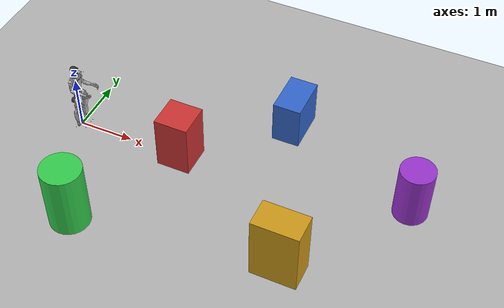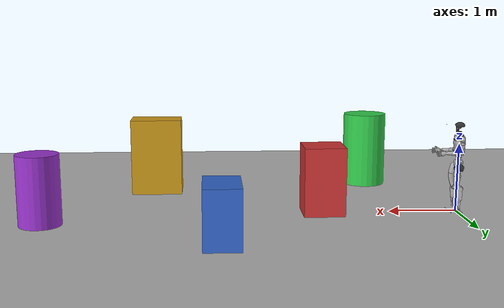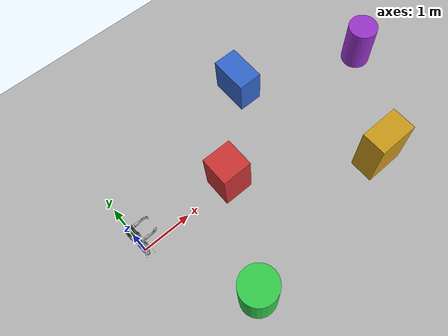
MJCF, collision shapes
<mujoco model="g1_12dof">
  <compiler angle="radian" meshdir="meshes/"/>

  <statistic meansize="0.144785" extent="1.23314" center="0.025392 2.0634e-05 -0.245975"/>
  <default>
    <joint damping="0.001" armature="0.01" frictionloss="0.1"/>
  </default>

  <asset>
    <mesh name="pelvis" file="pelvis.STL"/>
    <mesh name="pelvis_contour_link" file="pelvis_contour_link.STL"/>
    <mesh name="left_hip_pitch_link" file="left_hip_pitch_link.STL"/>
    <mesh name="left_hip_roll_link" file="left_hip_roll_link.STL"/>
    <mesh name="left_hip_yaw_link" file="left_hip_yaw_link.STL"/>
    <mesh name="left_knee_link" file="left_knee_link.STL"/>
    <mesh name="left_ankle_pitch_link" file="left_ankle_pitch_link.STL"/>
    <mesh name="left_ankle_roll_link" file="left_ankle_roll_link.STL"/>
    <mesh name="right_hip_pitch_link" file="right_hip_pitch_link.STL"/>
    <mesh name="right_hip_roll_link" file="right_hip_roll_link.STL"/>
    <mesh name="right_hip_yaw_link" file="right_hip_yaw_link.STL"/>
    <mesh name="right_knee_link" file="right_knee_link.STL"/>
    <mesh name="right_ankle_pitch_link" file="right_ankle_pitch_link.STL"/>
    <mesh name="right_ankle_roll_link" file="right_ankle_roll_link.STL"/>
    <mesh name="torso_link_23dof_rev_1_0" file="torso_link_23dof_rev_1_0.STL"/>
    <mesh name="logo_link" file="logo_link.STL"/>
    <mesh name="head_link" file="head_link.STL"/>
    <mesh name="left_shoulder_pitch_link" file="left_shoulder_pitch_link.STL"/>
    <mesh name="left_shoulder_roll_link" file="left_shoulder_roll_link.STL"/>
    <mesh name="left_shoulder_yaw_link" file="left_shoulder_yaw_link.STL"/>
    <mesh name="left_elbow_link" file="left_elbow_link.STL"/>
    <mesh name="left_wrist_roll_rubber_hand" file="left_wrist_roll_rubber_hand.STL"/>
    <mesh name="right_shoulder_pitch_link" file="right_shoulder_pitch_link.STL"/>
    <mesh name="right_shoulder_roll_link" file="right_shoulder_roll_link.STL"/>
    <mesh name="right_shoulder_yaw_link" file="right_shoulder_yaw_link.STL"/>
    <mesh name="right_elbow_link" file="right_elbow_link.STL"/>
    <mesh name="right_wrist_roll_rubber_hand" file="right_wrist_roll_rubber_hand.STL"/>
  </asset>

  <worldbody>
    <geom name="ground" type="plane" size="20 20 0.1" pos="0 0 0" rgba="0.7 0.7 0.7 1"/>
    <body name="pelvis" pos="0 0 0.793">
      <inertial pos="0.0144905 0.000151462 0.144068" quat="0.999881 -0.000505543 -0.0154276 0.000328408" mass="17.7349" diaginertia="0.552723 0.454092 0.211762"/>
      <joint name="floating_base_joint" type="free" limited="false" actuatorfrclimited="false"/>
      <!-- 2D LiDAR mounting body -->
      <body name="lidar_link" pos="0 0 0.20">
      <site name="lidar_ray_0" pos="0.20 0 0.30" quat="0.7071068 0 -0.7071068 0" size="0.005"/>
    <site name="lidar_ray_2" pos="0.20 0 0.30" quat="0.7193398 0 -0.6946584 0" size="0.005"/>
    <site name="lidar_ray_4" pos="0.20 0 0.30" quat="0.7313537 0 -0.6819984 0" size="0.005"/>
    <site name="lidar_ray_6" pos="0.20 0 0.30" quat="0.7431448 0 -0.6691306 0" size="0.005"/>
    <site name="lidar_ray_8" pos="0.20 0 0.30" quat="0.7547096 0 -0.6560590 0" size="0.005"/>
    <site name="lidar_ray_10" pos="0.20 0 0.30" quat="0.7660444 0 -0.6427876 0" size="0.005"/>
    <site name="lidar_ray_12" pos="0.20 0 0.30" quat="0.7771460 0 -0.6293204 0" size="0.005"/>
    <site name="lidar_ray_14" pos="0.20 0 0.30" quat="0.7880108 0 -0.6156615 0" size="0.005"/>
    <site name="lidar_ray_16" pos="0.20 0 0.30" quat="0.7986355 0 -0.6018150 0" size="0.005"/>
    <site name="lidar_ray_18" pos="0.20 0 0.30" quat="0.8090170 0 -0.5877853 0" size="0.005"/>
    <site name="lidar_ray_20" pos="0.20 0 0.30" quat="0.8191520 0 -0.5735764 0" size="0.005"/>
    <site name="lidar_ray_22" pos="0.20 0 0.30" quat="0.8290376 0 -0.5591929 0" size="0.005"/>
    <site name="lidar_ray_24" pos="0.20 0 0.30" quat="0.8386706 0 -0.5446390 0" size="0.005"/>
    <site name="lidar_ray_26" pos="0.20 0 0.30" quat="0.8480481 0 -0.5299193 0" size="0.005"/>
    <site name="lidar_ray_28" pos="0.20 0 0.30" quat="0.8571673 0 -0.5150381 0" size="0.005"/>
    <site name="lidar_ray_30" pos="0.20 0 0.30" quat="0.8660254 0 -0.5000000 0" size="0.005"/>
    <site name="lidar_ray_32" pos="0.20 0 0.30" quat="0.8746197 0 -0.4848096 0" size="0.005"/>
    <site name="lidar_ray_34" pos="0.20 0 0.30" quat="0.8829476 0 -0.4694716 0" size="0.005"/>
    <site name="lidar_ray_36" pos="0.20 0 0.30" quat="0.8910065 0 -0.4539905 0" size="0.005"/>
    <site name="lidar_ray_38" pos="0.20 0 0.30" quat="0.8987940 0 -0.4383711 0" size="0.005"/>
    <site name="lidar_ray_40" pos="0.20 0 0.30" quat="0.9063078 0 -0.4226183 0" size="0.005"/>
    <site name="lidar_ray_42" pos="0.20 0 0.30" quat="0.9135455 0 -0.4067366 0" size="0.005"/>
    <site name="lidar_ray_44" pos="0.20 0 0.30" quat="0.9205049 0 -0.3907311 0" size="0.005"/>
    <site name="lidar_ray_46" pos="0.20 0 0.30" quat="0.9271839 0 -0.3746066 0" size="0.005"/>
    <site name="lidar_ray_48" pos="0.20 0 0.30" quat="0.9335804 0 -0.3583679 0" size="0.005"/>
    <site name="lidar_ray_50" pos="0.20 0 0.30" quat="0.9396926 0 -0.3420201 0" size="0.005"/>
    <site name="lidar_ray_52" pos="0.20 0 0.30" quat="0.9455186 0 -0.3255682 0" size="0.005"/>
    <site name="lidar_ray_54" pos="0.20 0 0.30" quat="0.9510565 0 -0.3090170 0" size="0.005"/>
    <site name="lidar_ray_56" pos="0.20 0 0.30" quat="0.9563048 0 -0.2923717 0" size="0.005"/>
    <site name="lidar_ray_58" pos="0.20 0 0.30" quat="0.9612617 0 -0.2756374 0" size="0.005"/>
    <site name="lidar_ray_60" pos="0.20 0 0.30" quat="0.9659258 0 -0.2588190 0" size="0.005"/>
    <site name="lidar_ray_62" pos="0.20 0 0.30" quat="0.9702957 0 -0.2419219 0" size="0.005"/>
    <site name="lidar_ray_64" pos="0.20 0 0.30" quat="0.9743701 0 -0.2249511 0" size="0.005"/>
    <site name="lidar_ray_66" pos="0.20 0 0.30" quat="0.9781476 0 -0.2079117 0" size="0.005"/>
    <site name="lidar_ray_68" pos="0.20 0 0.30" quat="0.9816272 0 -0.1908090 0" size="0.005"/>
    <site name="lidar_ray_70" pos="0.20 0 0.30" quat="0.9848078 0 -0.1736482 0" size="0.005"/>
    <site name="lidar_ray_72" pos="0.20 0 0.30" quat="0.9876883 0 -0.1564345 0" size="0.005"/>
    <site name="lidar_ray_74" pos="0.20 0 0.30" quat="0.9902681 0 -0.1391731 0" size="0.005"/>
    <site name="lidar_ray_76" pos="0.20 0 0.30" quat="0.9925462 0 -0.1218693 0" size="0.005"/>
    <site name="lidar_ray_78" pos="0.20 0 0.30" quat="0.9945219 0 -0.1045285 0" size="0.005"/>
    <site name="lidar_ray_80" pos="0.20 0 0.30" quat="0.9961947 0 -0.0871557 0" size="0.005"/>
    <site name="lidar_ray_82" pos="0.20 0 0.30" quat="0.9975641 0 -0.0697565 0" size="0.005"/>
    <site name="lidar_ray_84" pos="0.20 0 0.30" quat="0.9986295 0 -0.0523360 0" size="0.005"/>
    <site name="lidar_ray_86" pos="0.20 0 0.30" quat="0.9993908 0 -0.0348995 0" size="0.005"/>
    <site name="lidar_ray_88" pos="0.20 0 0.30" quat="0.9998477 0 -0.0174524 0" size="0.005"/>
    <site name="lidar_ray_90" pos="0.20 0 0.30" quat="1.0000000 0 0.0000000 0" size="0.005"/>
    <site name="lidar_ray_92" pos="0.20 0 0.30" quat="0.9998477 0 0.0174524 0" size="0.005"/>
    <site name="lidar_ray_94" pos="0.20 0 0.30" quat="0.9993908 0 0.0348995 0" size="0.005"/>
    <site name="lidar_ray_96" pos="0.20 0 0.30" quat="0.9986295 0 0.0523360 0" size="0.005"/>
    <site name="lidar_ray_98" pos="0.20 0 0.30" quat="0.9975641 0 0.0697565 0" size="0.005"/>
    <site name="lidar_ray_100" pos="0.20 0 0.30" quat="0.9961947 0 0.0871557 0" size="0.005"/>
    <site name="lidar_ray_102" pos="0.20 0 0.30" quat="0.9945219 0 0.1045285 0" size="0.005"/>
    <site name="lidar_ray_104" pos="0.20 0 0.30" quat="0.9925462 0 0.1218693 0" size="0.005"/>
    <site name="lidar_ray_106" pos="0.20 0 0.30" quat="0.9902681 0 0.1391731 0" size="0.005"/>
    <site name="lidar_ray_108" pos="0.20 0 0.30" quat="0.9876883 0 0.1564345 0" size="0.005"/>
    <site name="lidar_ray_110" pos="0.20 0 0.30" quat="0.9848078 0 0.1736482 0" size="0.005"/>
    <site name="lidar_ray_112" pos="0.20 0 0.30" quat="0.9816272 0 0.1908090 0" size="0.005"/>
    <site name="lidar_ray_114" pos="0.20 0 0.30" quat="0.9781476 0 0.2079117 0" size="0.005"/>
    <site name="lidar_ray_116" pos="0.20 0 0.30" quat="0.9743701 0 0.2249511 0" size="0.005"/>
    <site name="lidar_ray_118" pos="0.20 0 0.30" quat="0.9702957 0 0.2419219 0" size="0.005"/>
    <site name="lidar_ray_120" pos="0.20 0 0.30" quat="0.9659258 0 0.2588190 0" size="0.005"/>
    <site name="lidar_ray_122" pos="0.20 0 0.30" quat="0.9612617 0 0.2756374 0" size="0.005"/>
    <site name="lidar_ray_124" pos="0.20 0 0.30" quat="0.9563048 0 0.2923717 0" size="0.005"/>
    <site name="lidar_ray_126" pos="0.20 0 0.30" quat="0.9510565 0 0.3090170 0" size="0.005"/>
    <site name="lidar_ray_128" pos="0.20 0 0.30" quat="0.9455186 0 0.3255682 0" size="0.005"/>
    <site name="lidar_ray_130" pos="0.20 0 0.30" quat="0.9396926 0 0.3420201 0" size="0.005"/>
    <site name="lidar_ray_132" pos="0.20 0 0.30" quat="0.9335804 0 0.3583679 0" size="0.005"/>
    <site name="lidar_ray_134" pos="0.20 0 0.30" quat="0.9271839 0 0.3746066 0" size="0.005"/>
    <site name="lidar_ray_136" pos="0.20 0 0.30" quat="0.9205049 0 0.3907311 0" size="0.005"/>
    <site name="lidar_ray_138" pos="0.20 0 0.30" quat="0.9135455 0 0.4067366 0" size="0.005"/>
    <site name="lidar_ray_140" pos="0.20 0 0.30" quat="0.9063078 0 0.4226183 0" size="0.005"/>
    <site name="lidar_ray_142" pos="0.20 0 0.30" quat="0.8987940 0 0.4383711 0" size="0.005"/>
    <site name="lidar_ray_144" pos="0.20 0 0.30" quat="0.8910065 0 0.4539905 0" size="0.005"/>
    <site name="lidar_ray_146" pos="0.20 0 0.30" quat="0.8829476 0 0.4694716 0" size="0.005"/>
    <site name="lidar_ray_148" pos="0.20 0 0.30" quat="0.8746197 0 0.4848096 0" size="0.005"/>
    <site name="lidar_ray_150" pos="0.20 0 0.30" quat="0.8660254 0 0.5000000 0" size="0.005"/>
    <site name="lidar_ray_152" pos="0.20 0 0.30" quat="0.8571673 0 0.5150381 0" size="0.005"/>
    <site name="lidar_ray_154" pos="0.20 0 0.30" quat="0.8480481 0 0.5299193 0" size="0.005"/>
    <site name="lidar_ray_156" pos="0.20 0 0.30" quat="0.8386706 0 0.5446390 0" size="0.005"/>
    <site name="lidar_ray_158" pos="0.20 0 0.30" quat="0.8290376 0 0.5591929 0" size="0.005"/>
    <site name="lidar_ray_160" pos="0.20 0 0.30" quat="0.8191520 0 0.5735764 0" size="0.005"/>
    <site name="lidar_ray_162" pos="0.20 0 0.30" quat="0.8090170 0 0.5877853 0" size="0.005"/>
    <site name="lidar_ray_164" pos="0.20 0 0.30" quat="0.7986355 0 0.6018150 0" size="0.005"/>
    <site name="lidar_ray_166" pos="0.20 0 0.30" quat="0.7880108 0 0.6156615 0" size="0.005"/>
    <site name="lidar_ray_168" pos="0.20 0 0.30" quat="0.7771460 0 0.6293204 0" size="0.005"/>
    <site name="lidar_ray_170" pos="0.20 0 0.30" quat="0.7660444 0 0.6427876 0" size="0.005"/>
    <site name="lidar_ray_172" pos="0.20 0 0.30" quat="0.7547096 0 0.6560590 0" size="0.005"/>
    <site name="lidar_ray_174" pos="0.20 0 0.30" quat="0.7431448 0 0.6691306 0" size="0.005"/>
    <site name="lidar_ray_176" pos="0.20 0 0.30" quat="0.7313537 0 0.6819984 0" size="0.005"/>
    <site name="lidar_ray_178" pos="0.20 0 0.30" quat="0.7193398 0 0.6946584 0" size="0.005"/>
    <site name="lidar_ray_180" pos="0.20 0 0.30" quat="0.7071068 0 0.7071068 0" size="0.005"/>
      </body>

      <geom type="mesh" contype="0" conaffinity="0" group="1" density="0" rgba="0.2 0.2 0.2 1" mesh="pelvis"/>
      <geom type="mesh" contype="0" conaffinity="0" group="1" density="0" rgba="0.7 0.7 0.7 1" mesh="pelvis_contour_link"/>
      <geom type="mesh" rgba="0.7 0.7 0.7 1" mesh="pelvis_contour_link"/>
      <geom type="mesh" contype="0" conaffinity="0" group="1" density="0" rgba="0.7 0.7 0.7 1" mesh="torso_link_23dof_rev_1_0"/>
      <geom type="mesh" rgba="0.7 0.7 0.7 1" mesh="torso_link_23dof_rev_1_0"/>
      <geom type="mesh" contype="0" conaffinity="0" group="1" density="0" rgba="0.2 0.2 0.2 1" mesh="logo_link"/>
      <geom type="mesh" rgba="0.2 0.2 0.2 1" mesh="logo_link"/>
      <geom type="mesh" contype="0" conaffinity="0" group="1" density="0" rgba="0.2 0.2 0.2 1" mesh="head_link"/>
      <geom type="mesh" rgba="0.2 0.2 0.2 1" mesh="head_link"/>
      <geom pos="-7.2e-06 0.10022 0.29178" quat="0.990264 0.139201 1.38722e-05 -9.86868e-05" type="mesh" contype="0" conaffinity="0" group="1" density="0" rgba="0.7 0.7 0.7 1" mesh="left_shoulder_pitch_link"/>
      <geom size="0.03 0.025" pos="7.72569e-07 0.141427 0.293195" quat="0.700213 0.0985001 0.700232 0.0983605" type="cylinder" rgba="0.7 0.7 0.7 1"/>
      <geom pos="3.73942e-07 0.14056 0.288961" quat="1 3.00026e-05 2.74716e-05 -9.57958e-05" type="mesh" contype="0" conaffinity="0" group="1" density="0" rgba="0.7 0.7 0.7 1" mesh="left_shoulder_roll_link"/>
      <geom size="0.03 0.015" pos="-0.00400139 0.146564 0.235962" quat="1 3.00026e-05 2.74716e-05 -9.57958e-05" type="cylinder" rgba="0.7 0.7 0.7 1"/>
      <geom pos="-4.10007e-06 0.146807 0.185762" quat="1 3.00026e-05 2.74716e-05 -9.57958e-05" type="mesh" contype="0" conaffinity="0" group="1" density="0" rgba="0.7 0.7 0.7 1" mesh="left_shoulder_yaw_link"/>
      <geom pos="-4.10007e-06 0.146807 0.185762" quat="1 3.00026e-05 2.74716e-05 -9.57958e-05" type="mesh" rgba="0.7 0.7 0.7 1" mesh="left_shoulder_yaw_link"/>
      <geom pos="0.0157745 0.146808 0.105243" quat="1 3.00026e-05 2.74716e-05 -9.57958e-05" type="mesh" contype="0" conaffinity="0" group="1" density="0" rgba="0.7 0.7 0.7 1" mesh="left_elbow_link"/>
      <geom pos="0.0157745 0.146808 0.105243" quat="1 3.00026e-05 2.74716e-05 -9.57958e-05" type="mesh" rgba="0.7 0.7 0.7 1" mesh="left_elbow_link"/>
      <geom pos="0.115774 0.148678 0.0952374" quat="1 3.00026e-05 2.74716e-05 -9.57958e-05" type="mesh" contype="0" conaffinity="0" group="1" density="0" rgba="0.7 0.7 0.7 1" mesh="left_wrist_roll_rubber_hand"/>
      <geom pos="0.115774 0.148678 0.0952374" quat="1 3.00026e-05 2.74716e-05 -9.57958e-05" type="mesh" rgba="0.7 0.7 0.7 1" mesh="left_wrist_roll_rubber_hand"/>
      <geom pos="-7.2e-06 -0.10021 0.29178" quat="0.990264 -0.139201 1.38722e-05 9.86868e-05" type="mesh" contype="0" conaffinity="0" group="1" density="0" rgba="0.7 0.7 0.7 1" mesh="right_shoulder_pitch_link"/>
      <geom size="0.03 0.025" pos="7.72569e-07 -0.141417 0.293195" quat="0.700213 -0.0985001 0.700232 -0.0983605" type="cylinder" rgba="0.7 0.7 0.7 1"/>
      <geom pos="3.73942e-07 -0.14055 0.288961" quat="1 -3.00026e-05 2.74716e-05 9.57958e-05" type="mesh" contype="0" conaffinity="0" group="1" density="0" rgba="0.7 0.7 0.7 1" mesh="right_shoulder_roll_link"/>
      <geom size="0.03 0.015" pos="-0.00400139 -0.146554 0.235962" quat="1 -3.00026e-05 2.74716e-05 9.57958e-05" type="cylinder" rgba="0.7 0.7 0.7 1"/>
      <geom pos="-4.10007e-06 -0.146797 0.185762" quat="1 -3.00026e-05 2.74716e-05 9.57958e-05" type="mesh" contype="0" conaffinity="0" group="1" density="0" rgba="0.7 0.7 0.7 1" mesh="right_shoulder_yaw_link"/>
      <geom pos="-4.10007e-06 -0.146797 0.185762" quat="1 -3.00026e-05 2.74716e-05 9.57958e-05" type="mesh" rgba="0.7 0.7 0.7 1" mesh="right_shoulder_yaw_link"/>
      <geom pos="0.0157745 -0.146798 0.105243" quat="1 -3.00026e-05 2.74716e-05 9.57958e-05" type="mesh" contype="0" conaffinity="0" group="1" density="0" rgba="0.7 0.7 0.7 1" mesh="right_elbow_link"/>
      <geom pos="0.0157745 -0.146798 0.105243" quat="1 -3.00026e-05 2.74716e-05 9.57958e-05" type="mesh" rgba="0.7 0.7 0.7 1" mesh="right_elbow_link"/>
      <geom pos="0.115774 -0.148668 0.0952374" quat="1 -3.00026e-05 2.74716e-05 9.57958e-05" type="mesh" contype="0" conaffinity="0" group="1" density="0" rgba="0.7 0.7 0.7 1" mesh="right_wrist_roll_rubber_hand"/>
      <geom pos="0.115774 -0.148668 0.0952374" quat="1 -3.00026e-05 2.74716e-05 9.57958e-05" type="mesh" rgba="0.7 0.7 0.7 1" mesh="right_wrist_roll_rubber_hand"/>
      <body name="left_hip_pitch_link" pos="0 0.064452 -0.1027">
        <inertial pos="0.002741 0.047791 -0.02606" quat="0.954862 0.293964 0.0302556 0.030122" mass="1.35" diaginertia="0.00181517 0.00153422 0.00116212"/>
        <joint name="left_hip_pitch_joint" pos="0 0 0" axis="0 1 0" range="-2.5307 2.8798" actuatorfrcrange="-88 88"/>
        <geom type="mesh" contype="0" conaffinity="0" group="1" density="0" rgba="0.2 0.2 0.2 1" mesh="left_hip_pitch_link"/>
        <geom type="mesh" rgba="0.2 0.2 0.2 1" mesh="left_hip_pitch_link"/>
        <body name="left_hip_roll_link" pos="0 0.052 -0.030465" quat="0.996179 0 -0.0873386 0">
          <inertial pos="0.029812 -0.001045 -0.087934" quat="0.977808 -1.97119e-05 0.205576 -0.0403793" mass="1.52" diaginertia="0.00254986 0.00241169 0.00148755"/>
          <joint name="left_hip_roll_joint" pos="0 0 0" axis="1 0 0" range="-0.5236 2.9671" actuatorfrcrange="-139 139"/>
          <geom type="mesh" contype="0" conaffinity="0" group="1" density="0" rgba="0.7 0.7 0.7 1" mesh="left_hip_roll_link"/>
          <geom type="mesh" rgba="0.7 0.7 0.7 1" mesh="left_hip_roll_link"/>
          <body name="left_hip_yaw_link" pos="0.025001 0 -0.12412">
            <inertial pos="-0.057709 -0.010981 -0.15078" quat="0.600598 0.15832 0.223482 0.751181" mass="1.702" diaginertia="0.00776166 0.00717575 0.00160139"/>
            <joint name="left_hip_yaw_joint" pos="0 0 0" axis="0 0 1" range="-2.7576 2.7576" actuatorfrcrange="-88 88"/>
            <geom type="mesh" contype="0" conaffinity="0" group="1" density="0" rgba="0.7 0.7 0.7 1" mesh="left_hip_yaw_link"/>
            <geom type="mesh" rgba="0.7 0.7 0.7 1" mesh="left_hip_yaw_link"/>
            <body name="left_knee_link" pos="-0.078273 0.0021489 -0.17734" quat="0.996179 0 0.0873386 0">
              <inertial pos="0.005457 0.003964 -0.12074" quat="0.923418 -0.0327699 0.0158246 0.382067" mass="1.932" diaginertia="0.0113804 0.0112778 0.00146458"/>
              <joint name="left_knee_joint" pos="0 0 0" axis="0 1 0" range="-0.087267 2.8798" actuatorfrcrange="-139 139"/>
              <geom type="mesh" contype="0" conaffinity="0" group="1" density="0" rgba="0.7 0.7 0.7 1" mesh="left_knee_link"/>
              <geom type="mesh" rgba="0.7 0.7 0.7 1" mesh="left_knee_link"/>
              <body name="left_ankle_pitch_link" pos="0 -9.4445e-05 -0.30001">
                <inertial pos="-0.007269 0 0.011137" quat="0.603053 0.369225 0.369225 0.603053" mass="0.074" diaginertia="1.89e-05 1.40805e-05 6.9195e-06"/>
                <joint name="left_ankle_pitch_joint" pos="0 0 0" axis="0 1 0" range="-0.87267 0.5236" actuatorfrcrange="-50 50"/>
                <geom type="mesh" contype="0" conaffinity="0" group="1" density="0" rgba="0.7 0.7 0.7 1" mesh="left_ankle_pitch_link"/>
                <geom type="mesh" rgba="0.7 0.7 0.7 1" mesh="left_ankle_pitch_link"/>
                <body name="left_ankle_roll_link" pos="0 0 -0.017558">
                  <inertial pos="0.026505 0 -0.016425" quat="-0.000481092 0.728482 -0.000618967 0.685065" mass="0.608" diaginertia="0.00167218 0.0016161 0.000217621"/>
                  <joint name="left_ankle_roll_joint" pos="0 0 0" axis="1 0 0" range="-0.2618 0.2618" actuatorfrcrange="-50 50"/>
                  <geom type="mesh" contype="0" conaffinity="0" group="1" density="0" rgba="0.2 0.2 0.2 1" mesh="left_ankle_roll_link"/>
                  <geom size="0.005" pos="-0.05 0.025 -0.03" rgba="0.2 0.2 0.2 1"/>
                  <geom size="0.005" pos="-0.05 -0.025 -0.03" rgba="0.2 0.2 0.2 1"/>
                  <geom size="0.005" pos="0.12 0.03 -0.03" rgba="0.2 0.2 0.2 1"/>
                  <geom size="0.005" pos="0.12 -0.03 -0.03" rgba="0.2 0.2 0.2 1"/>
                </body>
              </body>
            </body>
          </body>
        </body>
      </body>
      <body name="right_hip_pitch_link" pos="0 -0.064452 -0.1027">
        <inertial pos="0.002741 -0.047791 -0.02606" quat="0.954862 -0.293964 0.0302556 -0.030122" mass="1.35" diaginertia="0.00181517 0.00153422 0.00116212"/>
        <joint name="right_hip_pitch_joint" pos="0 0 0" axis="0 1 0" range="-2.5307 2.8798" actuatorfrcrange="-88 88"/>
        <geom type="mesh" contype="0" conaffinity="0" group="1" density="0" rgba="0.2 0.2 0.2 1" mesh="right_hip_pitch_link"/>
        <geom type="mesh" rgba="0.2 0.2 0.2 1" mesh="right_hip_pitch_link"/>
        <body name="right_hip_roll_link" pos="0 -0.052 -0.030465" quat="0.996179 0 -0.0873386 0">
          <inertial pos="0.029812 0.001045 -0.087934" quat="0.977808 1.97119e-05 0.205576 0.0403793" mass="1.52" diaginertia="0.00254986 0.00241169 0.00148755"/>
          <joint name="right_hip_roll_joint" pos="0 0 0" axis="1 0 0" range="-2.9671 0.5236" actuatorfrcrange="-139 139"/>
          <geom type="mesh" contype="0" conaffinity="0" group="1" density="0" rgba="0.7 0.7 0.7 1" mesh="right_hip_roll_link"/>
          <geom type="mesh" rgba="0.7 0.7 0.7 1" mesh="right_hip_roll_link"/>
          <body name="right_hip_yaw_link" pos="0.025001 0 -0.12412">
            <inertial pos="-0.057709 0.010981 -0.15078" quat="0.751181 0.223482 0.15832 0.600598" mass="1.702" diaginertia="0.00776166 0.00717575 0.00160139"/>
            <joint name="right_hip_yaw_joint" pos="0 0 0" axis="0 0 1" range="-2.7576 2.7576" actuatorfrcrange="-88 88"/>
            <geom type="mesh" contype="0" conaffinity="0" group="1" density="0" rgba="0.7 0.7 0.7 1" mesh="right_hip_yaw_link"/>
            <geom type="mesh" rgba="0.7 0.7 0.7 1" mesh="right_hip_yaw_link"/>
            <body name="right_knee_link" pos="-0.078273 -0.0021489 -0.17734" quat="0.996179 0 0.0873386 0">
              <inertial pos="0.005457 -0.003964 -0.12074" quat="0.923439 0.0345276 0.0116333 -0.382012" mass="1.932" diaginertia="0.011374 0.0112843 0.00146452"/>
              <joint name="right_knee_joint" pos="0 0 0" axis="0 1 0" range="-0.087267 2.8798" actuatorfrcrange="-139 139"/>
              <geom type="mesh" contype="0" conaffinity="0" group="1" density="0" rgba="0.7 0.7 0.7 1" mesh="right_knee_link"/>
              <geom type="mesh" rgba="0.7 0.7 0.7 1" mesh="right_knee_link"/>
              <body name="right_ankle_pitch_link" pos="0 9.4445e-05 -0.30001">
                <inertial pos="-0.007269 0 0.011137" quat="0.603053 0.369225 0.369225 0.603053" mass="0.074" diaginertia="1.89e-05 1.40805e-05 6.9195e-06"/>
                <joint name="right_ankle_pitch_joint" pos="0 0 0" axis="0 1 0" range="-0.87267 0.5236" actuatorfrcrange="-50 50"/>
                <geom type="mesh" contype="0" conaffinity="0" group="1" density="0" rgba="0.7 0.7 0.7 1" mesh="right_ankle_pitch_link"/>
                <geom type="mesh" rgba="0.7 0.7 0.7 1" mesh="right_ankle_pitch_link"/>
                <body name="right_ankle_roll_link" pos="0 0 -0.017558">
                  <inertial pos="0.026505 0 -0.016425" quat="0.000481092 0.728482 0.000618967 0.685065" mass="0.608" diaginertia="0.00167218 0.0016161 0.000217621"/>
                  <joint name="right_ankle_roll_joint" pos="0 0 0" axis="1 0 0" range="-0.2618 0.2618" actuatorfrcrange="-50 50"/>
                  <geom type="mesh" contype="0" conaffinity="0" group="1" density="0" rgba="0.2 0.2 0.2 1" mesh="right_ankle_roll_link"/>
                  <geom size="0.005" pos="-0.05 0.025 -0.03" rgba="0.2 0.2 0.2 1"/>
                  <geom size="0.005" pos="-0.05 -0.025 -0.03" rgba="0.2 0.2 0.2 1"/>
                  <geom size="0.005" pos="0.12 0.03 -0.03" rgba="0.2 0.2 0.2 1"/>
                  <geom size="0.005" pos="0.12 -0.03 -0.03" rgba="0.2 0.2 0.2 1"/>
                </body>
              </body>
            </body>
          </body>
        </body>
      </body>
    </body>

    <!-- Obstacles for navigation testing -->
    <geom name="obstacle_1" type="box" size="0.30 0.30 0.50" pos="2.0 0.0 0.50" rgba="0.8 0.2 0.2 1"/>
    <geom name="obstacle_2" type="box" size="0.25 0.40 0.40" pos="3.5 1.5 0.40" rgba="0.2 0.4 0.8 1"/>
    <geom name="obstacle_3" type="cylinder" size="0.35 0.60" pos="1.0 -2.0 0.60" rgba="0.2 0.8 0.3 1"/>
    <geom name="obstacle_4" type="box" size="0.40 0.25 0.60" pos="4.5 -1.5 0.60" rgba="0.8 0.6 0.1 1"/>
    <geom name="obstacle_5" type="cylinder" size="0.30 0.50" pos="6.0 0.5 0.50" rgba="0.6 0.2 0.8 1"/>

  </worldbody>

  <sensor>
    <rangefinder name="lidar_0" site="lidar_ray_0"/>
    <rangefinder name="lidar_2" site="lidar_ray_2"/>
    <rangefinder name="lidar_4" site="lidar_ray_4"/>
    <rangefinder name="lidar_6" site="lidar_ray_6"/>
    <rangefinder name="lidar_8" site="lidar_ray_8"/>
    <rangefinder name="lidar_10" site="lidar_ray_10"/>
    <rangefinder name="lidar_12" site="lidar_ray_12"/>
    <rangefinder name="lidar_14" site="lidar_ray_14"/>
    <rangefinder name="lidar_16" site="lidar_ray_16"/>
    <rangefinder name="lidar_18" site="lidar_ray_18"/>
    <rangefinder name="lidar_20" site="lidar_ray_20"/>
    <rangefinder name="lidar_22" site="lidar_ray_22"/>
    <rangefinder name="lidar_24" site="lidar_ray_24"/>
    <rangefinder name="lidar_26" site="lidar_ray_26"/>
    <rangefinder name="lidar_28" site="lidar_ray_28"/>
    <rangefinder name="lidar_30" site="lidar_ray_30"/>
    <rangefinder name="lidar_32" site="lidar_ray_32"/>
    <rangefinder name="lidar_34" site="lidar_ray_34"/>
    <rangefinder name="lidar_36" site="lidar_ray_36"/>
    <rangefinder name="lidar_38" site="lidar_ray_38"/>
    <rangefinder name="lidar_40" site="lidar_ray_40"/>
    <rangefinder name="lidar_42" site="lidar_ray_42"/>
    <rangefinder name="lidar_44" site="lidar_ray_44"/>
    <rangefinder name="lidar_46" site="lidar_ray_46"/>
    <rangefinder name="lidar_48" site="lidar_ray_48"/>
    <rangefinder name="lidar_50" site="lidar_ray_50"/>
    <rangefinder name="lidar_52" site="lidar_ray_52"/>
    <rangefinder name="lidar_54" site="lidar_ray_54"/>
    <rangefinder name="lidar_56" site="lidar_ray_56"/>
    <rangefinder name="lidar_58" site="lidar_ray_58"/>
    <rangefinder name="lidar_60" site="lidar_ray_60"/>
    <rangefinder name="lidar_62" site="lidar_ray_62"/>
    <rangefinder name="lidar_64" site="lidar_ray_64"/>
    <rangefinder name="lidar_66" site="lidar_ray_66"/>
    <rangefinder name="lidar_68" site="lidar_ray_68"/>
    <rangefinder name="lidar_70" site="lidar_ray_70"/>
    <rangefinder name="lidar_72" site="lidar_ray_72"/>
    <rangefinder name="lidar_74" site="lidar_ray_74"/>
    <rangefinder name="lidar_76" site="lidar_ray_76"/>
    <rangefinder name="lidar_78" site="lidar_ray_78"/>
    <rangefinder name="lidar_80" site="lidar_ray_80"/>
    <rangefinder name="lidar_82" site="lidar_ray_82"/>
    <rangefinder name="lidar_84" site="lidar_ray_84"/>
    <rangefinder name="lidar_86" site="lidar_ray_86"/>
    <rangefinder name="lidar_88" site="lidar_ray_88"/>
    <rangefinder name="lidar_90" site="lidar_ray_90"/>
    <rangefinder name="lidar_92" site="lidar_ray_92"/>
    <rangefinder name="lidar_94" site="lidar_ray_94"/>
    <rangefinder name="lidar_96" site="lidar_ray_96"/>
    <rangefinder name="lidar_98" site="lidar_ray_98"/>
    <rangefinder name="lidar_100" site="lidar_ray_100"/>
    <rangefinder name="lidar_102" site="lidar_ray_102"/>
    <rangefinder name="lidar_104" site="lidar_ray_104"/>
    <rangefinder name="lidar_106" site="lidar_ray_106"/>
    <rangefinder name="lidar_108" site="lidar_ray_108"/>
    <rangefinder name="lidar_110" site="lidar_ray_110"/>
    <rangefinder name="lidar_112" site="lidar_ray_112"/>
    <rangefinder name="lidar_114" site="lidar_ray_114"/>
    <rangefinder name="lidar_116" site="lidar_ray_116"/>
    <rangefinder name="lidar_118" site="lidar_ray_118"/>
    <rangefinder name="lidar_120" site="lidar_ray_120"/>
    <rangefinder name="lidar_122" site="lidar_ray_122"/>
    <rangefinder name="lidar_124" site="lidar_ray_124"/>
    <rangefinder name="lidar_126" site="lidar_ray_126"/>
    <rangefinder name="lidar_128" site="lidar_ray_128"/>
    <rangefinder name="lidar_130" site="lidar_ray_130"/>
    <rangefinder name="lidar_132" site="lidar_ray_132"/>
    <rangefinder name="lidar_134" site="lidar_ray_134"/>
    <rangefinder name="lidar_136" site="lidar_ray_136"/>
    <rangefinder name="lidar_138" site="lidar_ray_138"/>
    <rangefinder name="lidar_140" site="lidar_ray_140"/>
    <rangefinder name="lidar_142" site="lidar_ray_142"/>
    <rangefinder name="lidar_144" site="lidar_ray_144"/>
    <rangefinder name="lidar_146" site="lidar_ray_146"/>
    <rangefinder name="lidar_148" site="lidar_ray_148"/>
    <rangefinder name="lidar_150" site="lidar_ray_150"/>
    <rangefinder name="lidar_152" site="lidar_ray_152"/>
    <rangefinder name="lidar_154" site="lidar_ray_154"/>
    <rangefinder name="lidar_156" site="lidar_ray_156"/>
    <rangefinder name="lidar_158" site="lidar_ray_158"/>
    <rangefinder name="lidar_160" site="lidar_ray_160"/>
    <rangefinder name="lidar_162" site="lidar_ray_162"/>
    <rangefinder name="lidar_164" site="lidar_ray_164"/>
    <rangefinder name="lidar_166" site="lidar_ray_166"/>
    <rangefinder name="lidar_168" site="lidar_ray_168"/>
    <rangefinder name="lidar_170" site="lidar_ray_170"/>
    <rangefinder name="lidar_172" site="lidar_ray_172"/>
    <rangefinder name="lidar_174" site="lidar_ray_174"/>
    <rangefinder name="lidar_176" site="lidar_ray_176"/>
    <rangefinder name="lidar_178" site="lidar_ray_178"/>
    <rangefinder name="lidar_180" site="lidar_ray_180"/>
  </sensor>

  <actuator>
    <motor name="left_hip_pitch_joint" joint="left_hip_pitch_joint"/>
    <motor name="left_hip_roll_joint" joint="left_hip_roll_joint"/>
    <motor name="left_hip_yaw_joint" joint="left_hip_yaw_joint"/>
    <motor name="left_knee_joint" joint="left_knee_joint"/>
    <motor name="left_ankle_pitch_joint" joint="left_ankle_pitch_joint"/>
    <motor name="left_ankle_roll_joint" joint="left_ankle_roll_joint"/>
    <motor name="right_hip_pitch_joint" joint="right_hip_pitch_joint"/>
    <motor name="right_hip_roll_joint" joint="right_hip_roll_joint"/>
    <motor name="right_hip_yaw_joint" joint="right_hip_yaw_joint"/>
    <motor name="right_knee_joint" joint="right_knee_joint"/>
    <motor name="right_ankle_pitch_joint" joint="right_ankle_pitch_joint"/>
    <motor name="right_ankle_roll_joint" joint="right_ankle_roll_joint"/>
  </actuator>
</mujoco>
